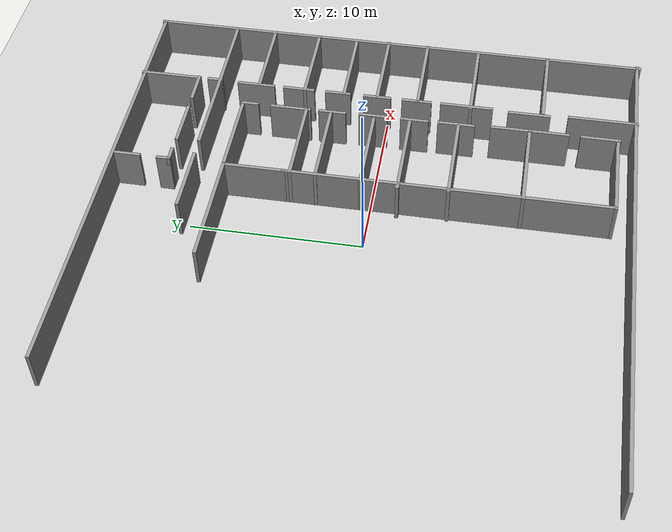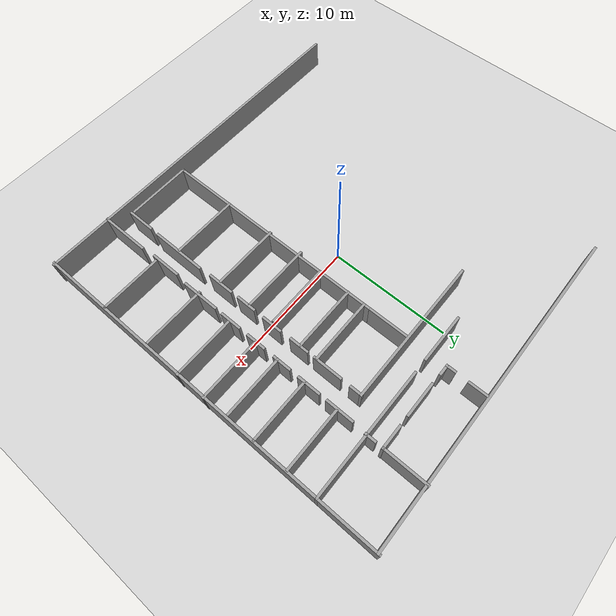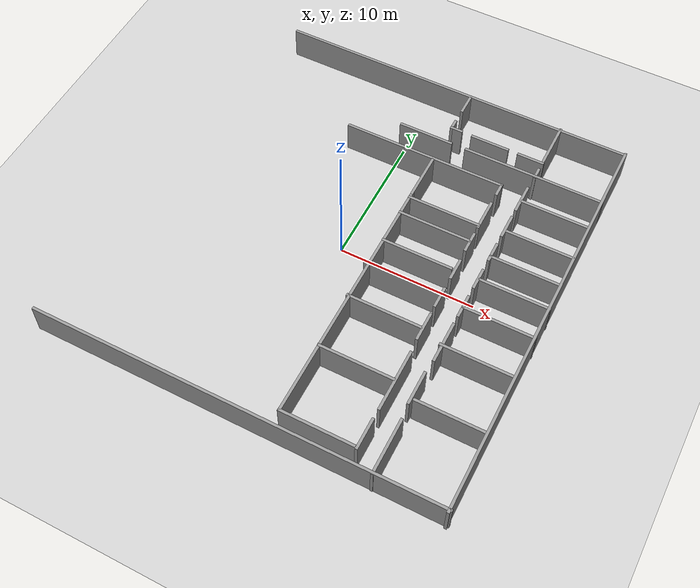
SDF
<sdf version="1.3">
 <world name="default">
  <include><uri>model://ground_plane</uri></include>
  <include><uri>model://sun</uri></include>
  <model name="Departamental">
   <link name="Wall_102">
    <collision name="Wall_102_Collision">
     <geometry><box><size>30.325300 0.200000 2.500000</size></box></geometry>
     <pose>0.000000 0.000000 1.250000 0.000000 0.000000 0.000000</pose>
    </collision>
    <visual name="Wall_102_Visual">
     <pose>0.000000 0.000000 1.250000 0.000000 0.000000 0.000000</pose>
     <geometry><box><size>30.325300 0.200000 2.500000</size></box></geometry>
     <material>
      <script><uri>file://media/materials/scripts/gazebo.material</uri><name>Gazebo/Grey</name></script>
     </material>
    </visual>
    <velocity_decay><linear>0.000000</linear><angular>0.000000</angular></velocity_decay>
    <pose>14.859700 0.139835 0.000000 0.000000 0.000000 -1.570800</pose>
   </link>
   <link name="Wall_104">
    <collision name="Wall_104_Collision">
     <geometry><box><size>29.947400 0.200000 2.500000</size></box></geometry>
     <pose>0.000000 0.000000 1.250000 0.000000 0.000000 0.000000</pose>
    </collision>
    <visual name="Wall_104_Visual">
     <pose>0.000000 0.000000 1.250000 0.000000 0.000000 0.000000</pose>
     <geometry><box><size>29.947400 0.200000 2.500000</size></box></geometry>
     <material>
      <script><uri>file://media/materials/scripts/gazebo.material</uri><name>Gazebo/Grey</name></script>
     </material>
    </visual>
    <velocity_decay><linear>0.000000</linear><angular>0.000000</angular></velocity_decay>
    <pose>0.078107 -14.790300 0.000000 0.000000 0.000000 3.141590</pose>
   </link>
   <link name="Wall_142">
    <collision name="Wall_142_Collision">
     <geometry><box><size>26.804700 0.200000 2.500000</size></box></geometry>
     <pose>0.000000 0.000000 1.250000 0.000000 0.000000 0.000000</pose>
    </collision>
    <visual name="Wall_142_Visual">
     <pose>0.000000 0.000000 1.250000 0.000000 0.000000 0.000000</pose>
     <geometry><box><size>26.804700 0.200000 2.500000</size></box></geometry>
     <material>
      <script><uri>file://media/materials/scripts/gazebo.material</uri><name>Gazebo/Grey</name></script>
     </material>
    </visual>
    <velocity_decay><linear>0.000000</linear><angular>0.000000</angular></velocity_decay>
    <pose>1.554440 15.106200 0.000000 0.000000 0.000000 0.000000</pose>
   </link>
   <link name="Wall_144">
    <collision name="Wall_144_Collision">
     <geometry><box><size>3.645560 0.200000 2.500000</size></box></geometry>
     <pose>0.000000 0.000000 1.250000 0.000000 0.000000 0.000000</pose>
    </collision>
    <visual name="Wall_144_Visual">
     <pose>0.000000 0.000000 1.250000 0.000000 0.000000 0.000000</pose>
     <geometry><box><size>3.645560 0.200000 2.500000</size></box></geometry>
     <material>
      <script><uri>file://media/materials/scripts/gazebo.material</uri><name>Gazebo/Grey</name></script>
     </material>
    </visual>
    <velocity_decay><linear>0.000000</linear><angular>0.000000</angular></velocity_decay>
    <pose>9.919810 13.463900 0.000000 0.000000 0.000000 -1.570800</pose>
   </link>
   <link name="Wall_146">
    <collision name="Wall_146_Collision">
     <geometry><box><size>0.938335 0.200000 2.500000</size></box></geometry>
     <pose>0.000000 0.000000 1.250000 0.000000 0.000000 0.000000</pose>
    </collision>
    <visual name="Wall_146_Visual">
     <pose>0.000000 0.000000 1.250000 0.000000 0.000000 0.000000</pose>
     <geometry><box><size>0.938335 0.200000 2.500000</size></box></geometry>
     <material>
      <script><uri>file://media/materials/scripts/gazebo.material</uri><name>Gazebo/Grey</name></script>
     </material>
    </visual>
    <velocity_decay><linear>0.000000</linear><angular>0.000000</angular></velocity_decay>
    <pose>9.919810 10.697800 0.000000 0.000000 0.000000 1.570800</pose>
   </link>
   <link name="Wall_148">
    <collision name="Wall_148_Collision">
     <geometry><box><size>2.019090 0.200000 2.500000</size></box></geometry>
     <pose>0.000000 0.000000 1.250000 0.000000 0.000000 0.000000</pose>
    </collision>
    <visual name="Wall_148_Visual">
     <pose>0.000000 0.000000 1.250000 0.000000 0.000000 0.000000</pose>
     <geometry><box><size>2.019090 0.200000 2.500000</size></box></geometry>
     <material>
      <script><uri>file://media/materials/scripts/gazebo.material</uri><name>Gazebo/Grey</name></script>
     </material>
    </visual>
    <velocity_decay><linear>0.000000</linear><angular>0.000000</angular></velocity_decay>
    <pose>9.037350 11.705000 0.000000 0.000000 0.000000 3.141590</pose>
   </link>
   <link name="Wall_151">
    <collision name="Wall_151_Collision">
     <geometry><box><size>2.898390 0.200000 2.500000</size></box></geometry>
     <pose>0.000000 0.000000 1.250000 0.000000 0.000000 0.000000</pose>
    </collision>
    <visual name="Wall_151_Visual">
     <pose>0.000000 0.000000 1.250000 0.000000 0.000000 0.000000</pose>
     <geometry><box><size>2.898390 0.200000 2.500000</size></box></geometry>
     <material>
      <script><uri>file://media/materials/scripts/gazebo.material</uri><name>Gazebo/Grey</name></script>
     </material>
    </visual>
    <velocity_decay><linear>0.000000</linear><angular>0.000000</angular></velocity_decay>
    <pose>5.893650 11.706300 0.000000 0.000000 0.000000 3.141590</pose>
   </link>
   <link name="Wall_153">
    <collision name="Wall_153_Collision">
     <geometry><box><size>0.949035 0.200000 2.500000</size></box></geometry>
     <pose>0.000000 0.000000 1.250000 0.000000 0.000000 0.000000</pose>
    </collision>
    <visual name="Wall_153_Visual">
     <pose>0.000000 0.000000 1.250000 0.000000 0.000000 0.000000</pose>
     <geometry><box><size>0.949035 0.200000 2.500000</size></box></geometry>
     <material>
      <script><uri>file://media/materials/scripts/gazebo.material</uri><name>Gazebo/Grey</name></script>
     </material>
    </visual>
    <velocity_decay><linear>0.000000</linear><angular>0.000000</angular></velocity_decay>
    <pose>3.241020 11.753100 0.000000 0.000000 0.000000 3.141590</pose>
   </link>
   <link name="Wall_154">
    <collision name="Wall_154_Collision">
     <geometry><box><size>0.842030 0.200000 2.500000</size></box></geometry>
     <pose>0.000000 0.000000 1.250000 0.000000 0.000000 0.000000</pose>
    </collision>
    <visual name="Wall_154_Visual">
     <pose>0.000000 0.000000 1.250000 0.000000 0.000000 0.000000</pose>
     <geometry><box><size>0.842030 0.200000 2.500000</size></box></geometry>
     <material>
      <script><uri>file://media/materials/scripts/gazebo.material</uri><name>Gazebo/Grey</name></script>
     </material>
    </visual>
    <velocity_decay><linear>0.000000</linear><angular>0.000000</angular></velocity_decay>
    <pose>2.866500 12.074100 0.000000 0.000000 0.000000 1.570800</pose>
   </link>
   <link name="Wall_156">
    <collision name="Wall_156_Collision">
     <geometry><box><size>1.599190 0.200000 2.500000</size></box></geometry>
     <pose>0.000000 0.000000 1.250000 0.000000 0.000000 0.000000</pose>
    </collision>
    <visual name="Wall_156_Visual">
     <pose>0.000000 0.000000 1.250000 0.000000 0.000000 0.000000</pose>
     <geometry><box><size>1.599190 0.200000 2.500000</size></box></geometry>
     <material>
      <script><uri>file://media/materials/scripts/gazebo.material</uri><name>Gazebo/Grey</name></script>
     </material>
    </visual>
    <velocity_decay><linear>0.000000</linear><angular>0.000000</angular></velocity_decay>
    <pose>2.882550 14.245000 0.000000 0.000000 0.000000 1.570800</pose>
   </link>
   <link name="Wall_16">
    <collision name="Wall_16_Collision">
     <geometry><box><size>19.040700 0.200000 2.500000</size></box></geometry>
     <pose>0.000000 0.000000 1.250000 0.000000 0.000000 0.000000</pose>
    </collision>
    <visual name="Wall_16_Visual">
     <pose>0.000000 0.000000 1.250000 0.000000 0.000000 0.000000</pose>
     <geometry><box><size>19.040700 0.200000 2.500000</size></box></geometry>
     <material>
      <script><uri>file://media/materials/scripts/gazebo.material</uri><name>Gazebo/Grey</name></script>
     </material>
    </visual>
    <velocity_decay><linear>0.000000</linear><angular>0.000000</angular></velocity_decay>
    <pose>2.903840 -4.346080 0.000000 0.000000 0.000000 -1.570800</pose>
   </link>
   <link name="Wall_160">
    <collision name="Wall_160_Collision">
     <geometry><box><size>2.291950 0.200000 2.500000</size></box></geometry>
     <pose>0.000000 0.000000 1.250000 0.000000 0.000000 0.000000</pose>
    </collision>
    <visual name="Wall_160_Visual">
     <pose>0.000000 0.000000 1.250000 0.000000 0.000000 0.000000</pose>
     <geometry><box><size>2.291950 0.200000 2.500000</size></box></geometry>
     <material>
      <script><uri>file://media/materials/scripts/gazebo.material</uri><name>Gazebo/Grey</name></script>
     </material>
    </visual>
    <velocity_decay><linear>0.000000</linear><angular>0.000000</angular></velocity_decay>
    <pose>9.852940 8.115050 0.000000 0.000000 0.000000 -1.570800</pose>
   </link>
   <link name="Wall_162">
    <collision name="Wall_162_Collision">
     <geometry><box><size>1.922780 0.200000 2.500000</size></box></geometry>
     <pose>0.000000 0.000000 1.250000 0.000000 0.000000 0.000000</pose>
    </collision>
    <visual name="Wall_162_Visual">
     <pose>0.000000 0.000000 1.250000 0.000000 0.000000 0.000000</pose>
     <geometry><box><size>1.922780 0.200000 2.500000</size></box></geometry>
     <material>
      <script><uri>file://media/materials/scripts/gazebo.material</uri><name>Gazebo/Grey</name></script>
     </material>
    </visual>
    <velocity_decay><linear>0.000000</linear><angular>0.000000</angular></velocity_decay>
    <pose>9.852940 5.469350 0.000000 0.000000 0.000000 -1.570800</pose>
   </link>
   <link name="Wall_164">
    <collision name="Wall_164_Collision">
     <geometry><box><size>1.553610 0.200000 2.500000</size></box></geometry>
     <pose>0.000000 0.000000 1.250000 0.000000 0.000000 0.000000</pose>
    </collision>
    <visual name="Wall_164_Visual">
     <pose>0.000000 0.000000 1.250000 0.000000 0.000000 0.000000</pose>
     <geometry><box><size>1.553610 0.200000 2.500000</size></box></geometry>
     <material>
      <script><uri>file://media/materials/scripts/gazebo.material</uri><name>Gazebo/Grey</name></script>
     </material>
    </visual>
    <velocity_decay><linear>0.000000</linear><angular>0.000000</angular></velocity_decay>
    <pose>9.852940 3.069760 0.000000 0.000000 0.000000 -1.570800</pose>
   </link>
   <link name="Wall_166">
    <collision name="Wall_166_Collision">
     <geometry><box><size>1.676670 0.200000 2.500000</size></box></geometry>
     <pose>0.000000 0.000000 1.250000 0.000000 0.000000 0.000000</pose>
    </collision>
    <visual name="Wall_166_Visual">
     <pose>0.000000 0.000000 1.250000 0.000000 0.000000 0.000000</pose>
     <geometry><box><size>1.676670 0.200000 2.500000</size></box></geometry>
     <material>
      <script><uri>file://media/materials/scripts/gazebo.material</uri><name>Gazebo/Grey</name></script>
     </material>
    </visual>
    <velocity_decay><linear>0.000000</linear><angular>0.000000</angular></velocity_decay>
    <pose>9.852940 0.670178 0.000000 0.000000 0.000000 -1.570800</pose>
   </link>
   <link name="Wall_168">
    <collision name="Wall_168_Collision">
     <geometry><box><size>1.799730 0.200000 2.500000</size></box></geometry>
     <pose>0.000000 0.000000 1.250000 0.000000 0.000000 0.000000</pose>
    </collision>
    <visual name="Wall_168_Visual">
     <pose>0.000000 0.000000 1.250000 0.000000 0.000000 0.000000</pose>
     <geometry><box><size>1.799730 0.200000 2.500000</size></box></geometry>
     <material>
      <script><uri>file://media/materials/scripts/gazebo.material</uri><name>Gazebo/Grey</name></script>
     </material>
    </visual>
    <velocity_decay><linear>0.000000</linear><angular>0.000000</angular></velocity_decay>
    <pose>9.852940 -1.729410 0.000000 0.000000 0.000000 -1.570800</pose>
   </link>
   <link name="Wall_170">
    <collision name="Wall_170_Collision">
     <geometry><box><size>3.153340 0.200000 2.500000</size></box></geometry>
     <pose>0.000000 0.000000 1.250000 0.000000 0.000000 0.000000</pose>
    </collision>
    <visual name="Wall_170_Visual">
     <pose>0.000000 0.000000 1.250000 0.000000 0.000000 0.000000</pose>
     <geometry><box><size>3.153340 0.200000 2.500000</size></box></geometry>
     <material>
      <script><uri>file://media/materials/scripts/gazebo.material</uri><name>Gazebo/Grey</name></script>
     </material>
    </visual>
    <velocity_decay><linear>0.000000</linear><angular>0.000000</angular></velocity_decay>
    <pose>9.852940 -4.744280 0.000000 0.000000 0.000000 -1.570800</pose>
   </link>
   <link name="Wall_172">
    <collision name="Wall_172_Collision">
     <geometry><box><size>2.538060 0.200000 2.500000</size></box></geometry>
     <pose>0.000000 0.000000 1.250000 0.000000 0.000000 0.000000</pose>
    </collision>
    <visual name="Wall_172_Visual">
     <pose>0.000000 0.000000 1.250000 0.000000 0.000000 0.000000</pose>
     <geometry><box><size>2.538060 0.200000 2.500000</size></box></geometry>
     <material>
      <script><uri>file://media/materials/scripts/gazebo.material</uri><name>Gazebo/Grey</name></script>
     </material>
    </visual>
    <velocity_decay><linear>0.000000</linear><angular>0.000000</angular></velocity_decay>
    <pose>9.729880 -8.497480 0.000000 0.000000 0.000000 -1.570800</pose>
   </link>
   <link name="Wall_174">
    <collision name="Wall_174_Collision">
     <geometry><box><size>4.137780 0.200000 2.500000</size></box></geometry>
     <pose>0.000000 0.000000 1.250000 0.000000 0.000000 0.000000</pose>
    </collision>
    <visual name="Wall_174_Visual">
     <pose>0.000000 0.000000 1.250000 0.000000 0.000000 0.000000</pose>
     <geometry><box><size>4.137780 0.200000 2.500000</size></box></geometry>
     <material>
      <script><uri>file://media/materials/scripts/gazebo.material</uri><name>Gazebo/Grey</name></script>
     </material>
    </visual>
    <velocity_decay><linear>0.000000</linear><angular>0.000000</angular></velocity_decay>
    <pose>9.852940 -12.866000 0.000000 0.000000 0.000000 -1.570800</pose>
   </link>
   <link name="Wall_176">
    <collision name="Wall_176_Collision">
     <geometry><box><size>4.999170 0.200000 2.500000</size></box></geometry>
     <pose>0.000000 0.000000 1.250000 0.000000 0.000000 0.000000</pose>
    </collision>
    <visual name="Wall_176_Visual">
     <pose>0.000000 0.000000 1.250000 0.000000 0.000000 0.000000</pose>
     <geometry><box><size>4.999170 0.200000 2.500000</size></box></geometry>
     <material>
      <script><uri>file://media/materials/scripts/gazebo.material</uri><name>Gazebo/Grey</name></script>
     </material>
    </visual>
    <velocity_decay><linear>0.000000</linear><angular>0.000000</angular></velocity_decay>
    <pose>12.375600 -9.297340 0.000000 0.000000 0.000000 0.000000</pose>
   </link>
   <link name="Wall_178">
    <collision name="Wall_178_Collision">
     <geometry><box><size>5.122230 0.200000 2.500000</size></box></geometry>
     <pose>0.000000 0.000000 1.250000 0.000000 0.000000 0.000000</pose>
    </collision>
    <visual name="Wall_178_Visual">
     <pose>0.000000 0.000000 1.250000 0.000000 0.000000 0.000000</pose>
     <geometry><box><size>5.122230 0.200000 2.500000</size></box></geometry>
     <material>
      <script><uri>file://media/materials/scripts/gazebo.material</uri><name>Gazebo/Grey</name></script>
     </material>
    </visual>
    <velocity_decay><linear>0.000000</linear><angular>0.000000</angular></velocity_decay>
    <pose>12.191000 -4.990390 0.000000 0.000000 0.000000 0.000000</pose>
   </link>
   <link name="Wall_180">
    <collision name="Wall_180_Collision">
     <geometry><box><size>5.245290 0.200000 2.500000</size></box></geometry>
     <pose>0.000000 0.000000 1.250000 0.000000 0.000000 0.000000</pose>
    </collision>
    <visual name="Wall_180_Visual">
     <pose>0.000000 0.000000 1.250000 0.000000 0.000000 0.000000</pose>
     <geometry><box><size>5.245290 0.200000 2.500000</size></box></geometry>
     <material>
      <script><uri>file://media/materials/scripts/gazebo.material</uri><name>Gazebo/Grey</name></script>
     </material>
    </visual>
    <velocity_decay><linear>0.000000</linear><angular>0.000000</angular></velocity_decay>
    <pose>12.375600 -1.790940 0.000000 0.000000 0.000000 0.000000</pose>
   </link>
   <link name="Wall_182">
    <collision name="Wall_182_Collision">
     <geometry><box><size>5.122230 0.200000 2.500000</size></box></geometry>
     <pose>0.000000 0.000000 1.250000 0.000000 0.000000 0.000000</pose>
    </collision>
    <visual name="Wall_182_Visual">
     <pose>0.000000 0.000000 1.250000 0.000000 0.000000 0.000000</pose>
     <geometry><box><size>5.122230 0.200000 2.500000</size></box></geometry>
     <material>
      <script><uri>file://media/materials/scripts/gazebo.material</uri><name>Gazebo/Grey</name></script>
     </material>
    </visual>
    <velocity_decay><linear>0.000000</linear><angular>0.000000</angular></velocity_decay>
    <pose>12.437100 0.670178 0.000000 0.000000 0.000000 0.000000</pose>
   </link>
   <link name="Wall_184">
    <collision name="Wall_184_Collision">
     <geometry><box><size>4.999170 0.200000 2.500000</size></box></geometry>
     <pose>0.000000 0.000000 1.250000 0.000000 0.000000 0.000000</pose>
    </collision>
    <visual name="Wall_184_Visual">
     <pose>0.000000 0.000000 1.250000 0.000000 0.000000 0.000000</pose>
     <geometry><box><size>4.999170 0.200000 2.500000</size></box></geometry>
     <material>
      <script><uri>file://media/materials/scripts/gazebo.material</uri><name>Gazebo/Grey</name></script>
     </material>
    </visual>
    <velocity_decay><linear>0.000000</linear><angular>0.000000</angular></velocity_decay>
    <pose>12.261000 2.693970 0.000000 0.000000 0.000000 0.000000</pose>
   </link>
   <link name="Wall_186">
    <collision name="Wall_186_Collision">
     <geometry><box><size>5.122230 0.200000 2.500000</size></box></geometry>
     <pose>0.000000 0.000000 1.250000 0.000000 0.000000 0.000000</pose>
    </collision>
    <visual name="Wall_186_Visual">
     <pose>0.000000 0.000000 1.250000 0.000000 0.000000 0.000000</pose>
     <geometry><box><size>5.122230 0.200000 2.500000</size></box></geometry>
     <material>
      <script><uri>file://media/materials/scripts/gazebo.material</uri><name>Gazebo/Grey</name></script>
     </material>
    </visual>
    <velocity_decay><linear>0.000000</linear><angular>0.000000</angular></velocity_decay>
    <pose>12.314000 5.100180 0.000000 0.000000 0.000000 0.000000</pose>
   </link>
   <link name="Wall_19">
    <collision name="Wall_19_Collision">
     <geometry><box><size>5.378310 0.200000 2.500000</size></box></geometry>
     <pose>0.000000 0.000000 1.250000 0.000000 0.000000 0.000000</pose>
    </collision>
    <visual name="Wall_19_Visual">
     <pose>0.000000 0.000000 1.250000 0.000000 0.000000 0.000000</pose>
     <geometry><box><size>5.378310 0.200000 2.500000</size></box></geometry>
     <material>
      <script><uri>file://media/materials/scripts/gazebo.material</uri><name>Gazebo/Grey</name></script>
     </material>
    </visual>
    <velocity_decay><linear>0.000000</linear><angular>0.000000</angular></velocity_decay>
    <pose>5.482740 -13.767400 0.000000 0.000000 0.000000 0.000000</pose>
   </link>
   <link name="Wall_190">
    <collision name="Wall_190_Collision">
     <geometry><box><size>4.999170 0.200000 2.500000</size></box></geometry>
     <pose>0.000000 0.000000 1.250000 0.000000 0.000000 0.000000</pose>
    </collision>
    <visual name="Wall_190_Visual">
     <pose>0.000000 0.000000 1.250000 0.000000 0.000000 0.000000</pose>
     <geometry><box><size>4.999170 0.200000 2.500000</size></box></geometry>
     <material>
      <script><uri>file://media/materials/scripts/gazebo.material</uri><name>Gazebo/Grey</name></script>
     </material>
    </visual>
    <velocity_decay><linear>0.000000</linear><angular>0.000000</angular></velocity_decay>
    <pose>12.375600 7.930470 0.000000 0.000000 0.000000 0.000000</pose>
   </link>
   <link name="Wall_2">
    <collision name="Wall_2_Collision">
     <geometry><box><size>12.127700 0.200000 2.500000</size></box></geometry>
     <pose>0.000000 0.000000 1.250000 0.000000 0.000000 0.000000</pose>
    </collision>
    <visual name="Wall_2_Visual">
     <pose>0.000000 0.000000 1.250000 0.000000 0.000000 0.000000</pose>
     <geometry><box><size>12.127700 0.200000 2.500000</size></box></geometry>
     <material>
      <script><uri>file://media/materials/scripts/gazebo.material</uri><name>Gazebo/Grey</name></script>
     </material>
    </visual>
    <velocity_decay><linear>0.000000</linear><angular>0.000000</angular></velocity_decay>
    <pose>2.172830 8.548470 0.000000 0.000000 0.000000 0.000000</pose>
   </link>
   <link name="Wall_3">
    <collision name="Wall_3_Collision">
     <geometry><box><size>1.060860 0.200000 2.500000</size></box></geometry>
     <pose>0.000000 0.000000 1.250000 0.000000 0.000000 0.000000</pose>
    </collision>
    <visual name="Wall_3_Visual">
     <pose>0.000000 0.000000 1.250000 0.000000 0.000000 0.000000</pose>
     <geometry><box><size>1.060860 0.200000 2.500000</size></box></geometry>
     <material>
      <script><uri>file://media/materials/scripts/gazebo.material</uri><name>Gazebo/Grey</name></script>
     </material>
    </visual>
    <velocity_decay><linear>0.000000</linear><angular>0.000000</angular></velocity_decay>
    <pose>8.136660 8.118040 0.000000 0.000000 0.000000 -1.570800</pose>
   </link>
   <link name="Wall_62">
    <collision name="Wall_62_Collision">
     <geometry><box><size>2.450900 0.200000 2.500000</size></box></geometry>
     <pose>0.000000 0.000000 1.250000 0.000000 0.000000 0.000000</pose>
    </collision>
    <visual name="Wall_62_Visual">
     <pose>0.000000 0.000000 1.250000 0.000000 0.000000 0.000000</pose>
     <geometry><box><size>2.450900 0.200000 2.500000</size></box></geometry>
     <material>
      <script><uri>file://media/materials/scripts/gazebo.material</uri><name>Gazebo/Grey</name></script>
     </material>
    </visual>
    <velocity_decay><linear>0.000000</linear><angular>0.000000</angular></velocity_decay>
    <pose>8.131260 5.650970 0.000000 0.000000 0.000000 -1.570800</pose>
   </link>
   <link name="Wall_64">
    <collision name="Wall_64_Collision">
     <geometry><box><size>5.370970 0.200000 2.500000</size></box></geometry>
     <pose>0.000000 0.000000 1.250000 0.000000 0.000000 0.000000</pose>
    </collision>
    <visual name="Wall_64_Visual">
     <pose>0.000000 0.000000 1.250000 0.000000 0.000000 0.000000</pose>
     <geometry><box><size>5.370970 0.200000 2.500000</size></box></geometry>
     <material>
      <script><uri>file://media/materials/scripts/gazebo.material</uri><name>Gazebo/Grey</name></script>
     </material>
    </visual>
    <velocity_decay><linear>0.000000</linear><angular>0.000000</angular></velocity_decay>
    <pose>5.484940 4.677620 0.000000 0.000000 0.000000 3.141590</pose>
   </link>
   <link name="Wall_66">
    <collision name="Wall_66_Collision">
     <geometry><box><size>3.667590 0.200000 2.500000</size></box></geometry>
     <pose>0.000000 0.000000 1.250000 0.000000 0.000000 0.000000</pose>
    </collision>
    <visual name="Wall_66_Visual">
     <pose>0.000000 0.000000 1.250000 0.000000 0.000000 0.000000</pose>
     <geometry><box><size>3.667590 0.200000 2.500000</size></box></geometry>
     <material>
      <script><uri>file://media/materials/scripts/gazebo.material</uri><name>Gazebo/Grey</name></script>
     </material>
    </visual>
    <velocity_decay><linear>0.000000</linear><angular>0.000000</angular></velocity_decay>
    <pose>2.899450 6.776420 0.000000 0.000000 0.000000 1.570800</pose>
   </link>
   <link name="Wall_68">
    <collision name="Wall_68_Collision">
     <geometry><box><size>1.654750 0.200000 2.500000</size></box></geometry>
     <pose>0.000000 0.000000 1.250000 0.000000 0.000000 0.000000</pose>
    </collision>
    <visual name="Wall_68_Visual">
     <pose>0.000000 0.000000 1.250000 0.000000 0.000000 0.000000</pose>
     <geometry><box><size>1.654750 0.200000 2.500000</size></box></geometry>
     <material>
      <script><uri>file://media/materials/scripts/gazebo.material</uri><name>Gazebo/Grey</name></script>
     </material>
    </visual>
    <velocity_decay><linear>0.000000</linear><angular>0.000000</angular></velocity_decay>
    <pose>8.145850 3.124820 0.000000 0.000000 0.000000 -1.570800</pose>
   </link>
   <link name="Wall_70">
    <collision name="Wall_70_Collision">
     <geometry><box><size>1.707650 0.200000 2.500000</size></box></geometry>
     <pose>0.000000 0.000000 1.250000 0.000000 0.000000 0.000000</pose>
    </collision>
    <visual name="Wall_70_Visual">
     <pose>0.000000 0.000000 1.250000 0.000000 0.000000 0.000000</pose>
     <geometry><box><size>1.707650 0.200000 2.500000</size></box></geometry>
     <material>
      <script><uri>file://media/materials/scripts/gazebo.material</uri><name>Gazebo/Grey</name></script>
     </material>
    </visual>
    <velocity_decay><linear>0.000000</linear><angular>0.000000</angular></velocity_decay>
    <pose>8.198750 0.664969 0.000000 0.000000 0.000000 -1.570800</pose>
   </link>
   <link name="Wall_72">
    <collision name="Wall_72_Collision">
     <geometry><box><size>1.681200 0.200000 2.500000</size></box></geometry>
     <pose>0.000000 0.000000 1.250000 0.000000 0.000000 0.000000</pose>
    </collision>
    <visual name="Wall_72_Visual">
     <pose>0.000000 0.000000 1.250000 0.000000 0.000000 0.000000</pose>
     <geometry><box><size>1.681200 0.200000 2.500000</size></box></geometry>
     <material>
      <script><uri>file://media/materials/scripts/gazebo.material</uri><name>Gazebo/Grey</name></script>
     </material>
    </visual>
    <velocity_decay><linear>0.000000</linear><angular>0.000000</angular></velocity_decay>
    <pose>8.198750 -1.808110 0.000000 0.000000 0.000000 -1.570800</pose>
   </link>
   <link name="Wall_74">
    <collision name="Wall_74_Collision">
     <geometry><box><size>2.206490 0.200000 2.500000</size></box></geometry>
     <pose>0.000000 0.000000 1.250000 0.000000 0.000000 0.000000</pose>
    </collision>
    <visual name="Wall_74_Visual">
     <pose>0.000000 0.000000 1.250000 0.000000 0.000000 0.000000</pose>
     <geometry><box><size>2.206490 0.200000 2.500000</size></box></geometry>
     <material>
      <script><uri>file://media/materials/scripts/gazebo.material</uri><name>Gazebo/Grey</name></script>
     </material>
    </visual>
    <velocity_decay><linear>0.000000</linear><angular>0.000000</angular></velocity_decay>
    <pose>8.225200 -4.292550 0.000000 0.000000 0.000000 -1.570800</pose>
   </link>
   <link name="Wall_77">
    <collision name="Wall_77_Collision">
     <geometry><box><size>4.639220 0.200000 2.500000</size></box></geometry>
     <pose>0.000000 0.000000 1.250000 0.000000 0.000000 0.000000</pose>
    </collision>
    <visual name="Wall_77_Visual">
     <pose>0.000000 0.000000 1.250000 0.000000 0.000000 0.000000</pose>
     <geometry><box><size>4.639220 0.200000 2.500000</size></box></geometry>
     <material>
      <script><uri>file://media/materials/scripts/gazebo.material</uri><name>Gazebo/Grey</name></script>
     </material>
    </visual>
    <velocity_decay><linear>0.000000</linear><angular>0.000000</angular></velocity_decay>
    <pose>8.312150 -8.632610 0.000000 0.000000 0.000000 -1.570800</pose>
   </link>
   <link name="Wall_80">
    <collision name="Wall_80_Collision">
     <geometry><box><size>2.340100 0.200000 2.500000</size></box></geometry>
     <pose>0.000000 0.000000 1.250000 0.000000 0.000000 0.000000</pose>
    </collision>
    <visual name="Wall_80_Visual">
     <pose>0.000000 0.000000 1.250000 0.000000 0.000000 0.000000</pose>
     <geometry><box><size>2.340100 0.200000 2.500000</size></box></geometry>
     <material>
      <script><uri>file://media/materials/scripts/gazebo.material</uri><name>Gazebo/Grey</name></script>
     </material>
    </visual>
    <velocity_decay><linear>0.000000</linear><angular>0.000000</angular></velocity_decay>
    <pose>8.284410 -12.759700 0.000000 0.000000 0.000000 1.570800</pose>
   </link>
   <link name="Wall_83">
    <collision name="Wall_83_Collision">
     <geometry><box><size>5.503730 0.200000 2.500000</size></box></geometry>
     <pose>0.000000 0.000000 1.250000 0.000000 0.000000 0.000000</pose>
    </collision>
    <visual name="Wall_83_Visual">
     <pose>0.000000 0.000000 1.250000 0.000000 0.000000 0.000000</pose>
     <geometry><box><size>5.503730 0.200000 2.500000</size></box></geometry>
     <material>
      <script><uri>file://media/materials/scripts/gazebo.material</uri><name>Gazebo/Grey</name></script>
     </material>
    </visual>
    <velocity_decay><linear>0.000000</linear><angular>0.000000</angular></velocity_decay>
    <pose>5.539490 -8.619070 0.000000 0.000000 0.000000 3.141590</pose>
   </link>
   <link name="Wall_85">
    <collision name="Wall_85_Collision">
     <geometry><box><size>5.503730 0.200000 2.500000</size></box></geometry>
     <pose>0.000000 0.000000 1.250000 0.000000 0.000000 0.000000</pose>
    </collision>
    <visual name="Wall_85_Visual">
     <pose>0.000000 0.000000 1.250000 0.000000 0.000000 0.000000</pose>
     <geometry><box><size>5.503730 0.200000 2.500000</size></box></geometry>
     <material>
      <script><uri>file://media/materials/scripts/gazebo.material</uri><name>Gazebo/Grey</name></script>
     </material>
    </visual>
    <velocity_decay><linear>0.000000</linear><angular>0.000000</angular></velocity_decay>
    <pose>5.446450 -4.431920 0.000000 0.000000 0.000000 3.141590</pose>
   </link>
   <link name="Wall_87">
    <collision name="Wall_87_Collision">
     <geometry><box><size>5.689820 0.200000 2.500000</size></box></geometry>
     <pose>0.000000 0.000000 1.250000 0.000000 0.000000 0.000000</pose>
    </collision>
    <visual name="Wall_87_Visual">
     <pose>0.000000 0.000000 1.250000 0.000000 0.000000 0.000000</pose>
     <geometry><box><size>5.689820 0.200000 2.500000</size></box></geometry>
     <material>
      <script><uri>file://media/materials/scripts/gazebo.material</uri><name>Gazebo/Grey</name></script>
     </material>
    </visual>
    <velocity_decay><linear>0.000000</linear><angular>0.000000</angular></velocity_decay>
    <pose>5.353400 -1.547440 0.000000 0.000000 0.000000 3.141590</pose>
   </link>
   <link name="Wall_89">
    <collision name="Wall_89_Collision">
     <geometry><box><size>5.224580 0.200000 2.500000</size></box></geometry>
     <pose>0.000000 0.000000 1.250000 0.000000 0.000000 0.000000</pose>
    </collision>
    <visual name="Wall_89_Visual">
     <pose>0.000000 0.000000 1.250000 0.000000 0.000000 0.000000</pose>
     <geometry><box><size>5.224580 0.200000 2.500000</size></box></geometry>
     <material>
      <script><uri>file://media/materials/scripts/gazebo.material</uri><name>Gazebo/Grey</name></script>
     </material>
    </visual>
    <velocity_decay><linear>0.000000</linear><angular>0.000000</angular></velocity_decay>
    <pose>5.399920 0.592661 0.000000 0.000000 0.000000 3.141590</pose>
   </link>
   <link name="Wall_91">
    <collision name="Wall_91_Collision">
     <geometry><box><size>5.410680 0.200000 2.500000</size></box></geometry>
     <pose>0.000000 0.000000 1.250000 0.000000 0.000000 0.000000</pose>
    </collision>
    <visual name="Wall_91_Visual">
     <pose>0.000000 0.000000 1.250000 0.000000 0.000000 0.000000</pose>
     <geometry><box><size>5.410680 0.200000 2.500000</size></box></geometry>
     <material>
      <script><uri>file://media/materials/scripts/gazebo.material</uri><name>Gazebo/Grey</name></script>
     </material>
    </visual>
    <velocity_decay><linear>0.000000</linear><angular>0.000000</angular></velocity_decay>
    <pose>5.492970 3.198000 0.000000 0.000000 0.000000 3.141590</pose>
   </link>
   <link name="Wall_97">
    <collision name="Wall_97_Collision">
     <geometry><box><size>4.108010 0.200000 2.500000</size></box></geometry>
     <pose>0.000000 0.000000 1.250000 0.000000 0.000000 0.000000</pose>
    </collision>
    <visual name="Wall_97_Visual">
     <pose>0.000000 0.000000 1.250000 0.000000 0.000000 0.000000</pose>
     <geometry><box><size>4.108010 0.200000 2.500000</size></box></geometry>
     <material>
      <script><uri>file://media/materials/scripts/gazebo.material</uri><name>Gazebo/Grey</name></script>
     </material>
    </visual>
    <velocity_decay><linear>0.000000</linear><angular>0.000000</angular></velocity_decay>
    <pose>1.460860 10.386200 0.000000 0.000000 0.000000 0.000000</pose>
   </link>
   <link name="Wall_99">
    <collision name="Wall_99_Collision">
     <geometry><box><size>10.435300 0.200000 2.500000</size></box></geometry>
     <pose>0.000000 0.000000 1.250000 0.000000 0.000000 0.000000</pose>
    </collision>
    <visual name="Wall_99_Visual">
     <pose>0.000000 0.000000 1.250000 0.000000 0.000000 0.000000</pose>
     <geometry><box><size>10.435300 0.200000 2.500000</size></box></geometry>
     <material>
      <script><uri>file://media/materials/scripts/gazebo.material</uri><name>Gazebo/Grey</name></script>
     </material>
    </visual>
    <velocity_decay><linear>0.000000</linear><angular>0.000000</angular></velocity_decay>
    <pose>9.742110 10.386200 0.000000 0.000000 0.000000 0.000000</pose>
   </link>
   <static>1</static>
  </model>
 </world>
</sdf>
